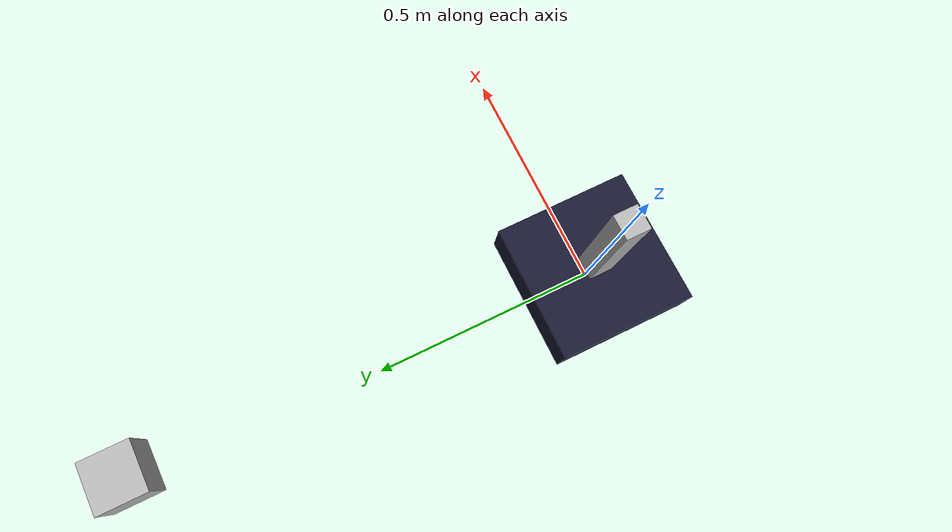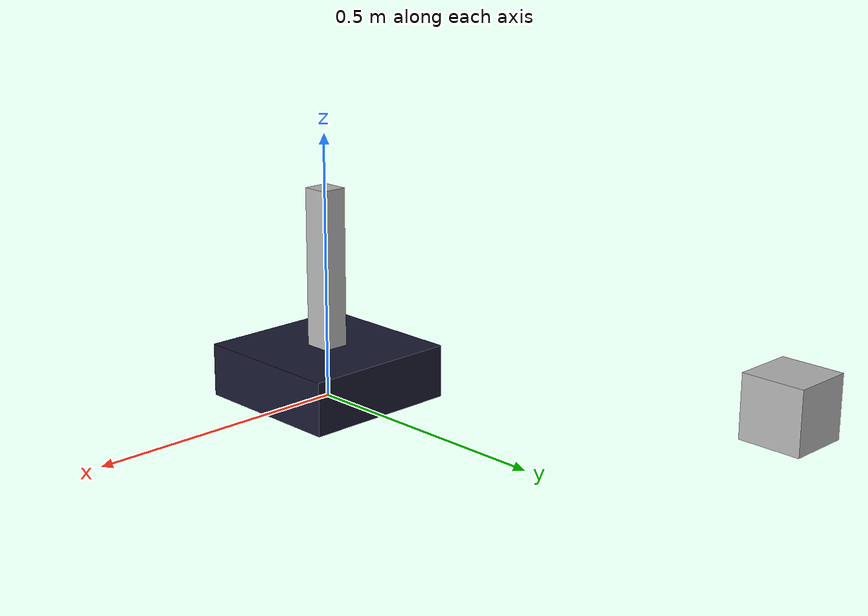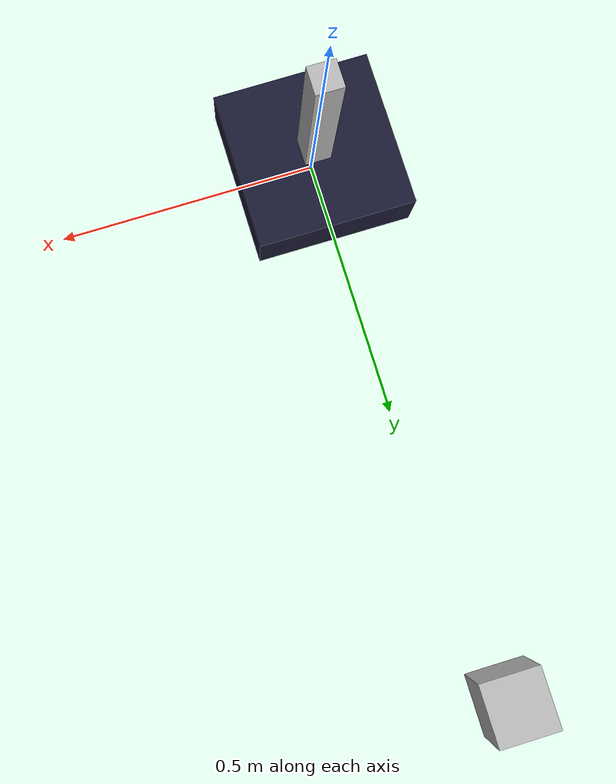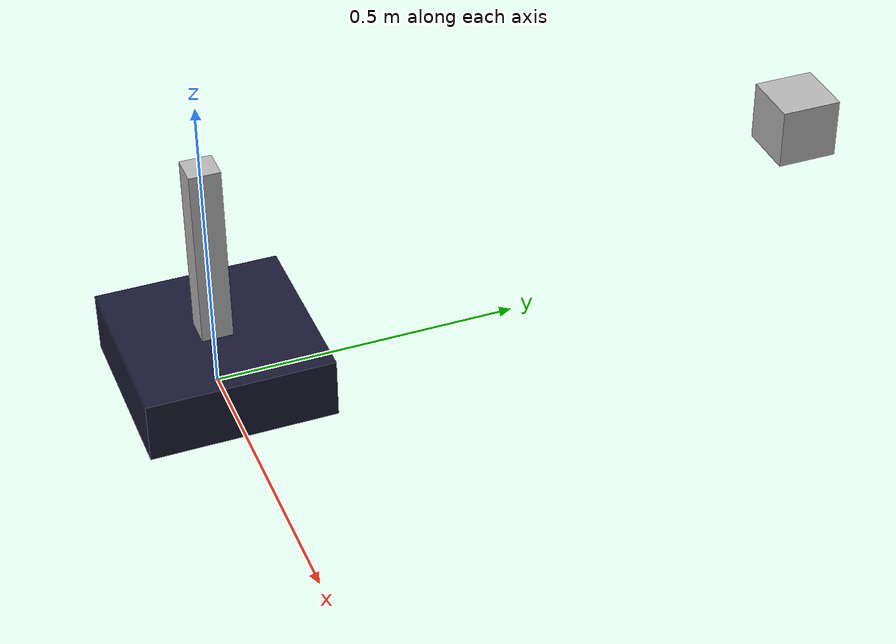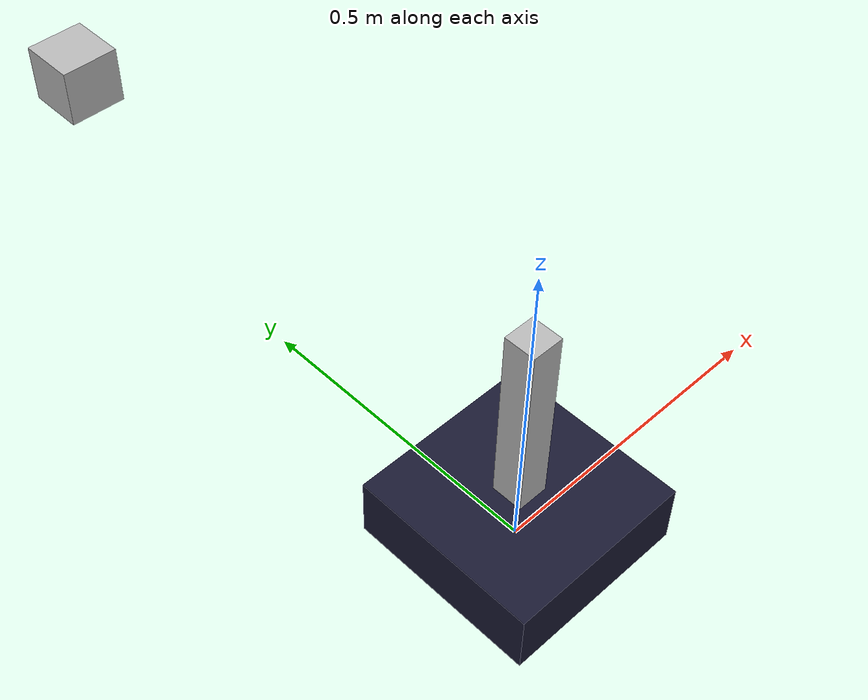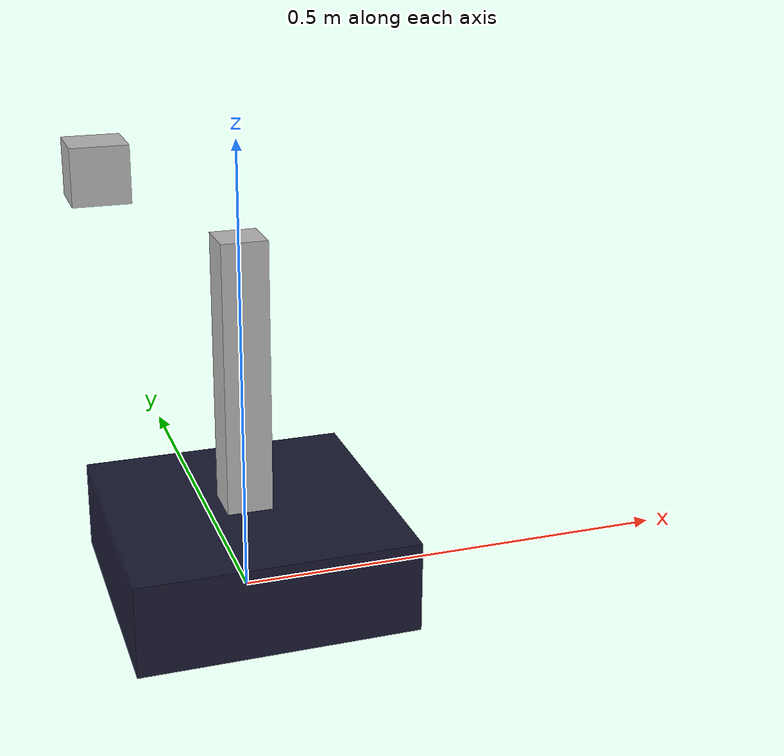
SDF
<?xml version='1.0'?>
<sdf version='1.6'>
    <model name="pendulum">
        <static>false</static>
        <link name='base_link'>
            <inertial>
                <mass>10</mass>
                <inertia>
                    <ixx>1</ixx>
                    <ixy>0.0</ixy>
                    <ixz>0.0</ixz>
                    <iyy>1</iyy>
                    <iyz>0.0</iyz>
                    <izz>1</izz>
                </inertia>
            </inertial>
            <pose>0 0 .05 0 0 0</pose>
            <collision name='collision'>
                <geometry>
                    <box>
                        <size>.3 .3 .1</size>
                    </box>
                </geometry>
            </collision>
            <visual name='visual'>
                <geometry>
                    <box>
                        <size>.3 .3 .1</size>
                    </box>
                </geometry>
                <material>
                    <ambient>0.7 0.1 0.1 1</ambient>
                    <diffuse>0.1 0.1 0.2 1</diffuse>
                    <specular>0 0 0 0</specular>
                    <emissive>0 0 0 1</emissive>
                </material>
            </visual>
        </link>

        <link name='link1'>
            <inertial>
                <mass>1.0</mass>
                <inertia>
                    <ixx>0.0133</ixx>
                    <ixy>0.0</ixy>
                    <ixz>0.0</ixz>
                    <iyy>0.0133</iyy>
                    <iyz>0.0</iyz>
                    <izz>0.00001</izz>
                </inertia>
            </inertial>
            <pose>0 0 .25 0 0 0</pose>
            <collision name='collision'>
                <geometry>
                    <box>
                        <size>.05 .05 .3</size>
                    </box>
                </geometry>
            </collision>
            <visual name='visual'>
                <geometry>
                    <box>
                        <size>.05 .05 .3</size>
                    </box>
                </geometry>
            </visual>
        </link>

        <link name='camera_link'>
            <pose>0 1 0.25 0 -0 -1.5708</pose>
            <visual name='visual'>
                <geometry>
                    <box>
                        <size>0.1 0.1 0.1</size>
                    </box>
                </geometry>
            </visual>
            <sensor name='my_camera' type='camera'>
                <camera>
                    <save enabled="false">
                        <path>/home/ryo/Desktop/camera_images</path>
                    </save>
                    <horizontal_fov>1.047</horizontal_fov>
                    <image>
                        <width>960</width>
                        <height>540</height>
                    </image>
                    <clip>
                        <near>0.1</near>
                        <far>100</far>
                    </clip>
                </camera>
                <update_rate>30</update_rate>
                <plugin name="camera_controller" filename="libgazebo_ros_camera.so">
                    <alwaysOn>true</alwaysOn>
                    <updateRate>0.0</updateRate>
                    <cameraName>ur5/camera1</cameraName>
                    <imageTopicName>image_raw</imageTopicName>
                    <cameraInfoTopicName>camera_info</cameraInfoTopicName>
                    <frameName>camera_link</frameName>
                    <hackBaseline>0.07</hackBaseline>
                    <distortionK1>0.0</distortionK1>
                    <distortionK2>0.0</distortionK2>
                    <distortionK3>0.0</distortionK3>
                    <distortionT1>0.0</distortionT1>
                    <distortionT2>0.0</distortionT2>
                </plugin>
            </sensor>
        </link>

        <joint type="revolute" name="hinge1">
            <pose>0 0 -0.15 0 0 0</pose>
            <child>link1</child>
            <parent>base_link</parent>
            <axis>
                <xyz>0 1 0</xyz>
            </axis>
        </joint>

        <joint type="fixed" name="base_fix">
            <pose>0 0 0 0 0 0</pose>
            <child>base_link</child>
            <parent>world</parent>
        </joint>

        <joint type="fixed" name="camera_fix">
            <pose>0 0 0 0 0 0</pose>
            <child>camera_link</child>
            <parent>world</parent>
        </joint>

        <plugin name="ur5_model_plugin" filename="libur5_model_plugin.so">
            <topic_name>ur5_action</topic_name>
        </plugin>
    </model>
</sdf>
